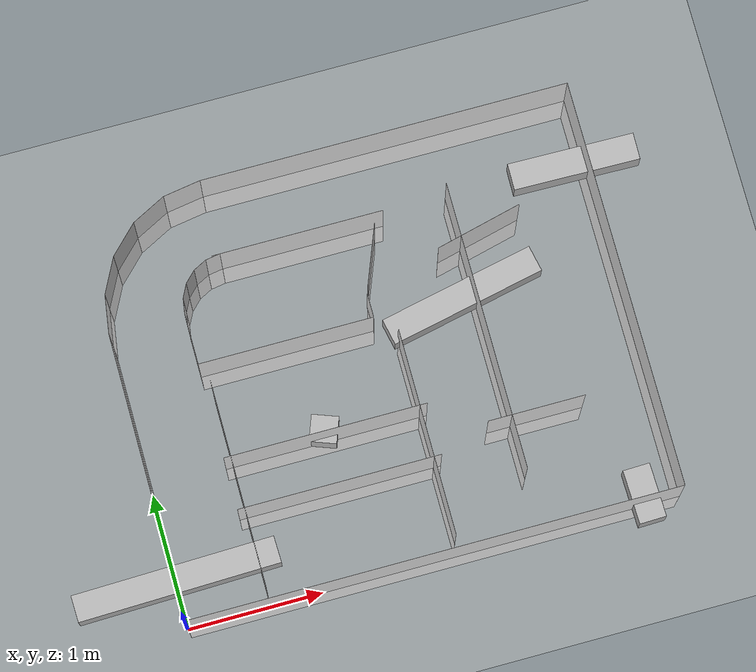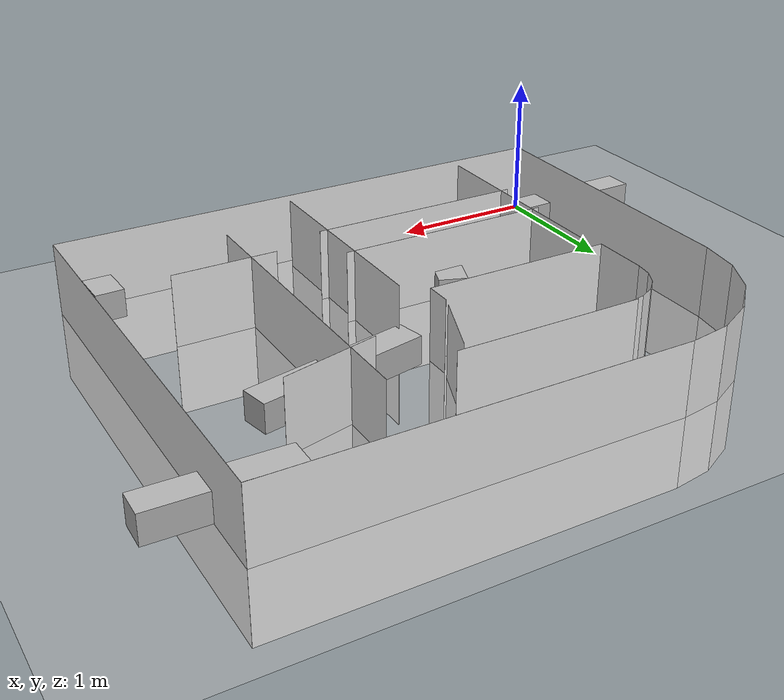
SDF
<sdf version="1.7">
 <world name="default">
  <light name="sun" type="directional">
   <pose>0 0 10 0 -0 0</pose>
   <diffuse>0.8 0.8 0.8 1</diffuse>
   <specular>0.1 0.1 0.1 1</specular>
   <attenuation>
    <range>1000</range>
    <constant>0.9</constant>
    <linear>0.01</linear>
    <quadratic>0.001</quadratic>
   </attenuation>
   <direction>-0.5 0.5 -1</direction>
   <spot><inner_angle>0</inner_angle><outer_angle>0</outer_angle><falloff>0</falloff></spot>
  </light>
  <model name="ground_plane">
   <static>1</static>
   <link name="link">
    <collision name="collision">
     <geometry><plane><normal>0 0 1</normal><size>100 100</size></plane></geometry>
     <surface><friction><ode><mu>100</mu><mu2>50</mu2></ode></friction></surface>
    </collision>
    <visual name="visual">
     <cast_shadows>0</cast_shadows>
     <geometry><plane><normal>0 0 1</normal><size>100 100</size></plane></geometry>
     <material>
      <script><uri>file://media/materials/scripts/gazebo.material</uri><name>Gazebo/Grey</name></script>
     </material>
    </visual>
   </link>
  </model>
  <model name="wall_0">
   <static>1</static>
   <link name="link">
    <collision name="collision"><geometry><box><size>2.1336 0.001 1</size></box></geometry></collision>
    <visual name="visual">
     <geometry><box><size>2.1336 0.001 1</size></box></geometry>
     <material>
      <script><name>Gazebo/White</name><uri>file://media/materials/scripts/gazebo.material</uri></script>
     </material>
    </visual>
   </link>
   <pose>0 1.0668 0 0 -0 1.5708</pose>
  </model>
  <model name="wall_1">
   <static>1</static>
   <link name="link">
    <collision name="collision"><geometry><box><size>0.286088 0.001 1</size></box></geometry></collision>
    <visual name="visual">
     <geometry><box><size>0.286088 0.001 1</size></box></geometry>
     <material>
      <script><name>Gazebo/White</name><uri>file://media/materials/scripts/gazebo.material</uri></script>
     </material>
    </visual>
   </link>
   <pose>0.022377 2.27489 0 0 -0 1.41372</pose>
  </model>
  <model name="wall_2">
   <static>1</static>
   <link name="link">
    <collision name="collision"><geometry><box><size>0.286088 0.001 1</size></box></geometry></collision>
    <visual name="visual">
     <geometry><box><size>0.286088 0.001 1</size></box></geometry>
     <material>
      <script><name>Gazebo/White</name><uri>file://media/materials/scripts/gazebo.material</uri></script>
     </material>
    </visual>
   </link>
   <pose>0.109695 2.54362 0 0 -0 1.09956</pose>
  </model>
  <model name="wall_3">
   <static>1</static>
   <link name="link">
    <collision name="collision"><geometry><box><size>0.286088 0.001 1</size></box></geometry></collision>
    <visual name="visual">
     <geometry><box><size>0.286088 0.001 1</size></box></geometry>
     <material>
      <script><name>Gazebo/White</name><uri>file://media/materials/scripts/gazebo.material</uri></script>
     </material>
    </visual>
   </link>
   <pose>0.275783 2.77222 0 0 -0 0.785398</pose>
  </model>
  <model name="wall_4">
   <static>1</static>
   <link name="link">
    <collision name="collision"><geometry><box><size>0.286088 0.001 1</size></box></geometry></collision>
    <visual name="visual">
     <geometry><box><size>0.286088 0.001 1</size></box></geometry>
     <material>
      <script><name>Gazebo/White</name><uri>file://media/materials/scripts/gazebo.material</uri></script>
     </material>
    </visual>
   </link>
   <pose>0.504383 2.93831 0 0 -0 0.471239</pose>
  </model>
  <model name="wall_5">
   <static>1</static>
   <link name="link">
    <collision name="collision"><geometry><box><size>0.286088 0.001 1</size></box></geometry></collision>
    <visual name="visual">
     <geometry><box><size>0.286088 0.001 1</size></box></geometry>
     <material>
      <script><name>Gazebo/White</name><uri>file://media/materials/scripts/gazebo.material</uri></script>
     </material>
    </visual>
   </link>
   <pose>0.773119 3.02563 0 0 -0 0.15708</pose>
  </model>
  <model name="wall_6">
   <static>1</static>
   <link name="link">
    <collision name="collision"><geometry><box><size>2.74321 0.001 1</size></box></geometry></collision>
    <visual name="visual">
     <geometry><box><size>2.74321 0.001 1</size></box></geometry>
     <material>
      <script><name>Gazebo/White</name><uri>file://media/materials/scripts/gazebo.material</uri></script>
     </material>
    </visual>
   </link>
   <pose>2.286 3.04801 0 0 -0 0</pose>
  </model>
  <model name="wall_7">
   <static>1</static>
   <link name="link">
    <collision name="collision"><geometry><box><size>3.04801 0.001 1</size></box></geometry></collision>
    <visual name="visual">
     <geometry><box><size>3.04801 0.001 1</size></box></geometry>
     <material>
      <script><name>Gazebo/White</name><uri>file://media/materials/scripts/gazebo.material</uri></script>
     </material>
    </visual>
   </link>
   <pose>3.65761 1.524 0 0 0 -1.5708</pose>
  </model>
  <model name="wall_8">
   <static>1</static>
   <link name="link">
    <collision name="collision"><geometry><box><size>3.65761 0.001 1</size></box></geometry></collision>
    <visual name="visual">
     <geometry><box><size>3.65761 0.001 1</size></box></geometry>
     <material>
      <script><name>Gazebo/White</name><uri>file://media/materials/scripts/gazebo.material</uri></script>
     </material>
    </visual>
   </link>
   <pose>1.8288 0 0 0 0 -3.14159</pose>
  </model>
  <model name="wall_9">
   <static>1</static>
   <link name="link">
    <collision name="collision"><geometry><box><size>1.53158 0.001 1</size></box></geometry></collision>
    <visual name="visual">
     <geometry><box><size>1.53158 0.001 1</size></box></geometry>
     <material>
      <script><name>Gazebo/White</name><uri>file://media/materials/scripts/gazebo.material</uri></script>
     </material>
    </visual>
   </link>
   <pose>0.612121 0.856981 0 0 -0 1.5708</pose>
  </model>
  <model name="wall_10">
   <static>1</static>
   <link name="link">
    <collision name="collision"><geometry><box><size>1.49861 0.001 1</size></box></geometry></collision>
    <visual name="visual">
     <geometry><box><size>1.49861 0.001 1</size></box></geometry>
     <material>
      <script><name>Gazebo/White</name><uri>file://media/materials/scripts/gazebo.material</uri></script>
     </material>
    </visual>
   </link>
   <pose>1.3081 1.05055 0 0 -0 0</pose>
  </model>
  <model name="wall_11">
   <static>1</static>
   <link name="link">
    <collision name="collision"><geometry><box><size>1.53984 0.001 1</size></box></geometry></collision>
    <visual name="visual">
     <geometry><box><size>1.53984 0.001 1</size></box></geometry>
     <material>
      <script><name>Gazebo/White</name><uri>file://media/materials/scripts/gazebo.material</uri></script>
     </material>
    </visual>
   </link>
   <pose>2.00207 0.858635 0 0 0 -1.5708</pose>
  </model>
  <model name="wall_12">
   <static>1</static>
   <link name="link">
    <collision name="collision"><geometry><box><size>1.4986 0.001 1</size></box></geometry></collision>
    <visual name="visual">
     <geometry><box><size>1.4986 0.001 1</size></box></geometry>
     <material>
      <script><name>Gazebo/White</name><uri>file://media/materials/scripts/gazebo.material</uri></script>
     </material>
    </visual>
   </link>
   <pose>1.3081 0.667772 0 0 0 -3.14159</pose>
  </model>
  <model name="wall_13">
   <static>1</static>
   <link name="link">
    <collision name="collision"><geometry><box><size>0.381001 0.001 1</size></box></geometry></collision>
    <visual name="visual">
     <geometry><box><size>0.381001 0.001 1</size></box></geometry>
     <material>
      <script><name>Gazebo/White</name><uri>file://media/materials/scripts/gazebo.material</uri></script>
     </material>
    </visual>
   </link>
   <pose>0.558801 1.9431 0 0 -0 1.5708</pose>
  </model>
  <model name="wall_14">
   <static>1</static>
   <link name="link">
    <collision name="collision"><geometry><box><size>0.111256 0.001 1</size></box></geometry></collision>
    <visual name="visual">
     <geometry><box><size>0.111256 0.001 1</size></box></geometry>
     <material>
      <script><name>Gazebo/White</name><uri>file://media/materials/scripts/gazebo.material</uri></script>
     </material>
    </visual>
   </link>
   <pose>0.567503 2.18855 0 0 -0 1.41372</pose>
  </model>
  <model name="wall_15">
   <static>1</static>
   <link name="link">
    <collision name="collision"><geometry><box><size>0.111256 0.001 1</size></box></geometry></collision>
    <visual name="visual">
     <geometry><box><size>0.111256 0.001 1</size></box></geometry>
     <material>
      <script><name>Gazebo/White</name><uri>file://media/materials/scripts/gazebo.material</uri></script>
     </material>
    </visual>
   </link>
   <pose>0.60146 2.29306 0 0 -0 1.09956</pose>
  </model>
  <model name="wall_16">
   <static>1</static>
   <link name="link">
    <collision name="collision"><geometry><box><size>0.111256 0.001 1</size></box></geometry></collision>
    <visual name="visual">
     <geometry><box><size>0.111256 0.001 1</size></box></geometry>
     <material>
      <script><name>Gazebo/White</name><uri>file://media/materials/scripts/gazebo.material</uri></script>
     </material>
    </visual>
   </link>
   <pose>0.66605 2.38196 0 0 -0 0.785398</pose>
  </model>
  <model name="wall_17">
   <static>1</static>
   <link name="link">
    <collision name="collision"><geometry><box><size>0.111256 0.001 1</size></box></geometry></collision>
    <visual name="visual">
     <geometry><box><size>0.111256 0.001 1</size></box></geometry>
     <material>
      <script><name>Gazebo/White</name><uri>file://media/materials/scripts/gazebo.material</uri></script>
     </material>
    </visual>
   </link>
   <pose>0.75495 2.44655 0 0 -0 0.471239</pose>
  </model>
  <model name="wall_18">
   <static>1</static>
   <link name="link">
    <collision name="collision"><geometry><box><size>0.111256 0.001 1</size></box></geometry></collision>
    <visual name="visual">
     <geometry><box><size>0.111256 0.001 1</size></box></geometry>
     <material>
      <script><name>Gazebo/White</name><uri>file://media/materials/scripts/gazebo.material</uri></script>
     </material>
    </visual>
   </link>
   <pose>0.859458 2.4805 0 0 -0 0.15708</pose>
  </model>
  <model name="wall_19">
   <static>1</static>
   <link name="link">
    <collision name="collision"><geometry><box><size>1.27 0.001 1</size></box></geometry></collision>
    <visual name="visual">
     <geometry><box><size>1.27 0.001 1</size></box></geometry>
     <material>
      <script><name>Gazebo/White</name><uri>file://media/materials/scripts/gazebo.material</uri></script>
     </material>
    </visual>
   </link>
   <pose>1.49085 2.48921 0 0 -0 0</pose>
  </model>
  <model name="wall_21">
   <static>1</static>
   <link name="link">
    <collision name="collision"><geometry><box><size>0.485269 0.001 1</size></box></geometry></collision>
    <visual name="visual">
     <geometry><box><size>0.485269 0.001 1</size></box></geometry>
     <material>
      <script><name>Gazebo/White</name><uri>file://media/materials/scripts/gazebo.material</uri></script>
     </material>
    </visual>
   </link>
   <pose>1.96231 2.21248 0 0 0 -1.94138</pose>
  </model>
  <model name="wall_22">
   <static>1</static>
   <link name="link">
    <collision name="collision"><geometry><box><size>0.1778 0.001 1</size></box></geometry></collision>
    <visual name="visual">
     <geometry><box><size>0.1778 0.001 1</size></box></geometry>
     <material>
      <script><name>Gazebo/White</name><uri>file://media/materials/scripts/gazebo.material</uri></script>
     </material>
    </visual>
   </link>
   <pose>1.8542 1.8415 0 0 0 -1.5708</pose>
  </model>
  <model name="wall_23">
   <static>1</static>
   <link name="link">
    <collision name="collision"><geometry><box><size>1.2954 0.001 1</size></box></geometry></collision>
    <visual name="visual">
     <geometry><box><size>1.2954 0.001 1</size></box></geometry>
     <material>
      <script><name>Gazebo/White</name><uri>file://media/materials/scripts/gazebo.material</uri></script>
     </material>
    </visual>
   </link>
   <pose>1.2065 1.7526 0 0 0 -3.14159</pose>
  </model>
  <model name="wall_24">
   <static>1</static>
   <link name="link">
    <collision name="collision"><geometry><box><size>0.665141 0.001 1</size></box></geometry></collision>
    <visual name="visual">
     <geometry><box><size>0.665141 0.001 1</size></box></geometry>
     <material>
      <script><name>Gazebo/White</name><uri>file://media/materials/scripts/gazebo.material</uri></script>
     </material>
    </visual>
   </link>
   <pose>2.75724 2.19561 -0 0 -0 0.238624</pose>
  </model>
  <model name="wall_25">
   <static>1</static>
   <link name="link">
    <collision name="collision"><geometry><box><size>0.718498 0.001 1</size></box></geometry></collision>
    <visual name="visual">
     <geometry><box><size>0.718498 0.001 1</size></box></geometry>
     <material>
      <script><name>Gazebo/White</name><uri>file://media/materials/scripts/gazebo.material</uri></script>
     </material>
    </visual>
   </link>
   <pose>2.7982 0.81086 0 0 0 -3.14159</pose>
  </model>
  <model name="wall_26">
   <static>1</static>
   <link name="link">
    <collision name="collision"><geometry><box><size>2.14956 0.001 1</size></box></geometry></collision>
    <visual name="visual">
     <geometry><box><size>2.14956 0.001 1</size></box></geometry>
     <material>
      <script><name>Gazebo/White</name><uri>file://media/materials/scripts/gazebo.material</uri></script>
     </material>
    </visual>
   </link>
   <pose>2.6162 1.48685 0 0 -0 1.5708</pose>
  </model>
  <gravity>0 0 -9.8</gravity>
  <magnetic_field>6e-06 2.3e-05 -4.2e-05</magnetic_field>
  <atmosphere type="adiabatic"/>
  <physics name="default_physics" default="0" type="ode">
   <max_step_size>0.001</max_step_size>
   <real_time_factor>1</real_time_factor>
   <real_time_update_rate>1000</real_time_update_rate>
  </physics>
  <scene><ambient>0.4 0.4 0.4 1</ambient><background>0.7 0.7 0.7 1</background><shadows>1</shadows></scene>
  <spherical_coordinates>
   <surface_model>EARTH_WGS84</surface_model>
   <latitude_deg>0</latitude_deg>
   <longitude_deg>0</longitude_deg>
   <elevation>0</elevation>
   <heading_deg>0</heading_deg>
  </spherical_coordinates>
  <model name="cat">
   <static>1</static>
   <link name="link">
    <collision name="collision"><geometry><box><size>0.2 0.945513 0.2</size></box></geometry></collision>
    <visual name="visual">
     <cast_shadows>0</cast_shadows>
     <geometry><box><size>0.2 0.945513 0.2</size></box></geometry>
     <material>
      <script>
       <uri>model://cat/materials/scripts</uri>
       <uri>model://cat/materials/textures</uri>
       <name>vrc/cat</name>
      </script>
     </material>
    </visual>
   </link>
   <pose>3.57904 2.54261 0.0995 0 0 -1.58831</pose>
  </model>
  <model name="horse">
   <static>1</static>
   <link name="link">
    <collision name="collision"><geometry><box><size>1.19295 0.2 0.2</size></box></geometry></collision>
    <visual name="visual">
     <cast_shadows>0</cast_shadows>
     <geometry><box><size>1.19295 0.2 0.2</size></box></geometry>
     <material>
      <script>
       <uri>model://horse/materials/scripts</uri>
       <uri>model://horse/materials/textures</uri>
       <name>vrc/horse</name>
      </script>
     </material>
    </visual>
   </link>
   <pose>2.52922 1.79929 0.1 0 -0 0.208418</pose>
  </model>
  <model name="zebra">
   <static>1</static>
   <link name="link">
    <collision name="collision"><geometry><box><size>0.402747 0.2 0.2</size></box></geometry></collision>
    <visual name="visual">
     <cast_shadows>0</cast_shadows>
     <geometry><box><size>0.402747 0.2 0.2</size></box></geometry>
     <material>
      <script>
       <uri>model://zebra/materials/scripts</uri>
       <uri>model://zebra/materials/textures</uri>
       <name>vrc/zebra</name>
      </script>
     </material>
    </visual>
   </link>
   <pose>3.39904 0.058234 0.1 0 0 -1.54492</pose>
  </model>
  <model name="dog">
   <static>1</static>
   <link name="link">
    <collision name="collision"><geometry><box><size>0.2 1.50441 0.2</size></box></geometry></collision>
    <visual name="visual">
     <cast_shadows>0</cast_shadows>
     <geometry><box><size>0.2 1.50441 0.2</size></box></geometry>
     <material>
      <script>
       <uri>model://dog/materials/scripts</uri>
       <uri>model://dog/materials/textures</uri>
       <name>vrc/dog</name>
      </script>
     </material>
    </visual>
   </link>
   <pose>0.011715 0.345725 0.1 0 -0 1.59482</pose>
  </model>
  <model name="elephant">
   <static>1</static>
   <link name="link">
    <collision name="collision"><geometry><box><size>0.200135 0.2 0.2</size></box></geometry></collision>
    <visual name="visual">
     <cast_shadows>0</cast_shadows>
     <geometry><box><size>0.200135 0.2 0.2</size></box></geometry>
     <material>
      <script>
       <uri>model://elephant/materials/scripts</uri>
       <uri>model://elephant/materials/textures</uri>
       <name>vrc/elephant</name>
      </script>
     </material>
    </visual>
   </link>
   <pose>1.30988 1.1148 0.104548 0 0 -0.351474</pose>
  </model>
 </world>
</sdf>
